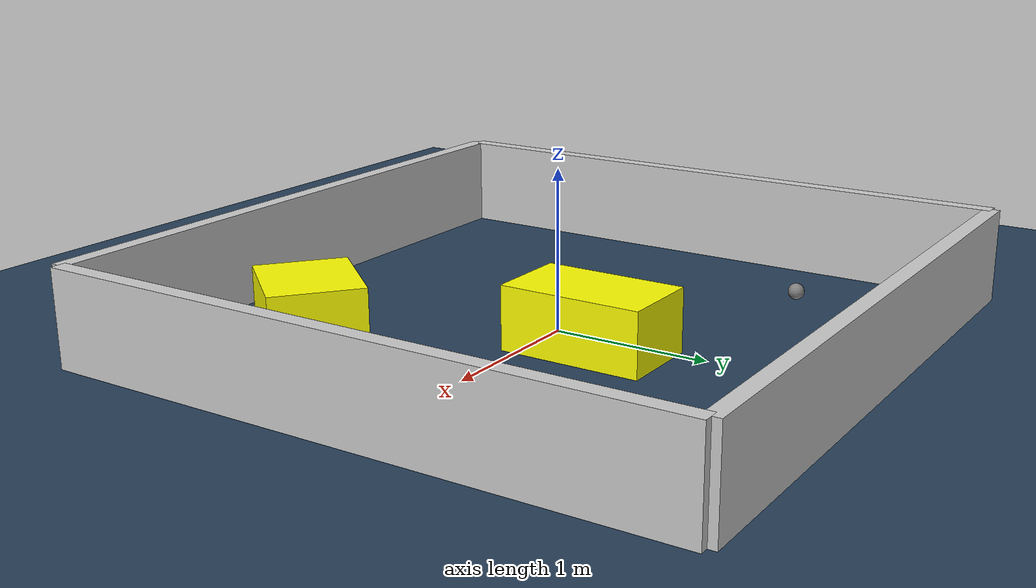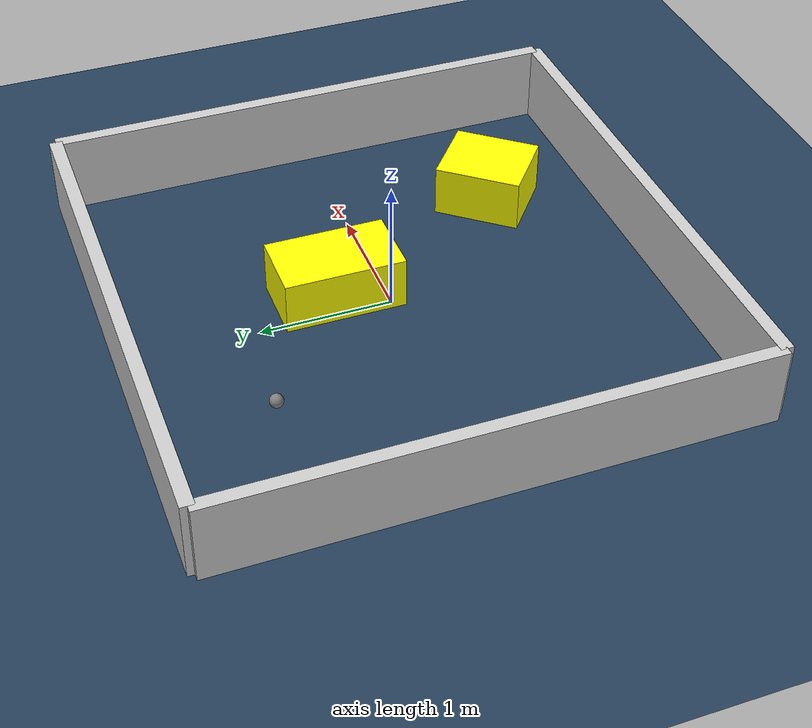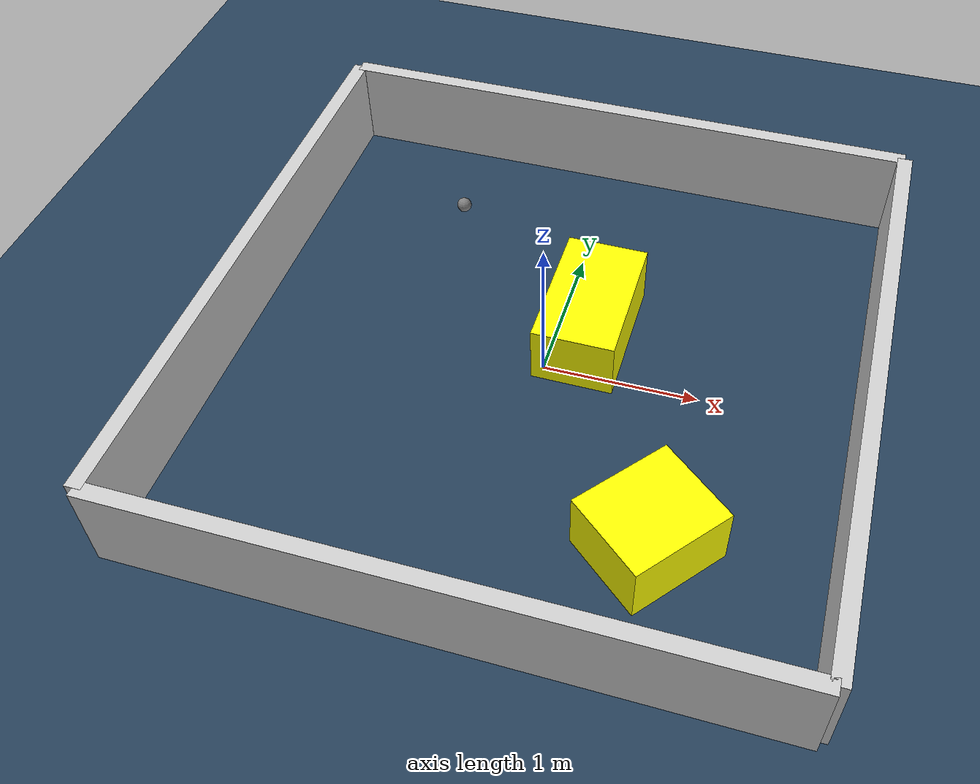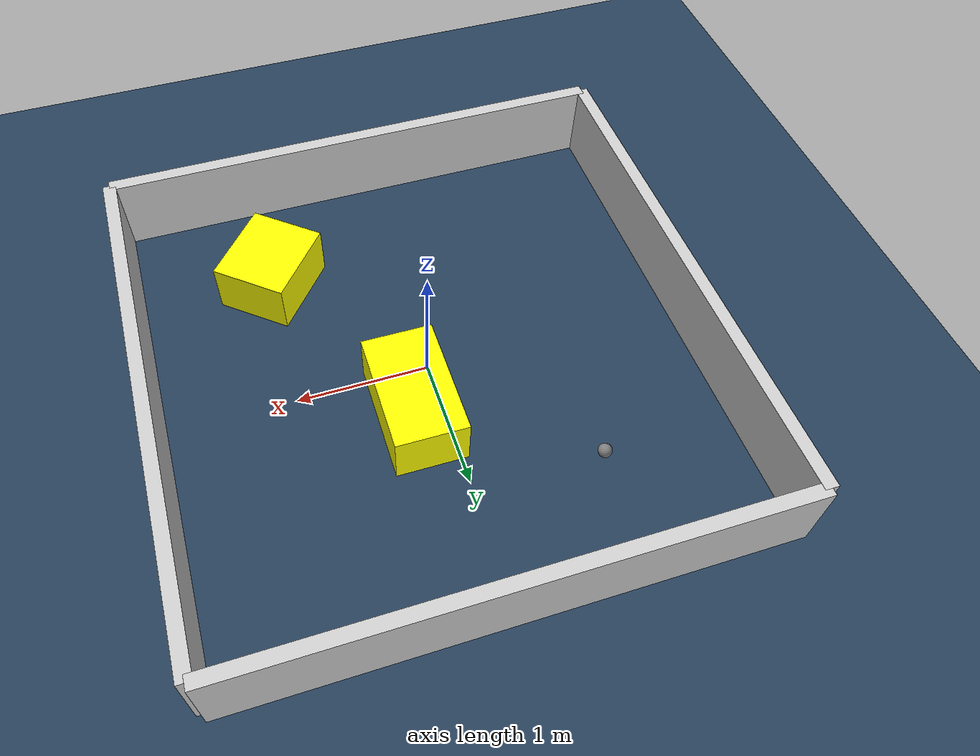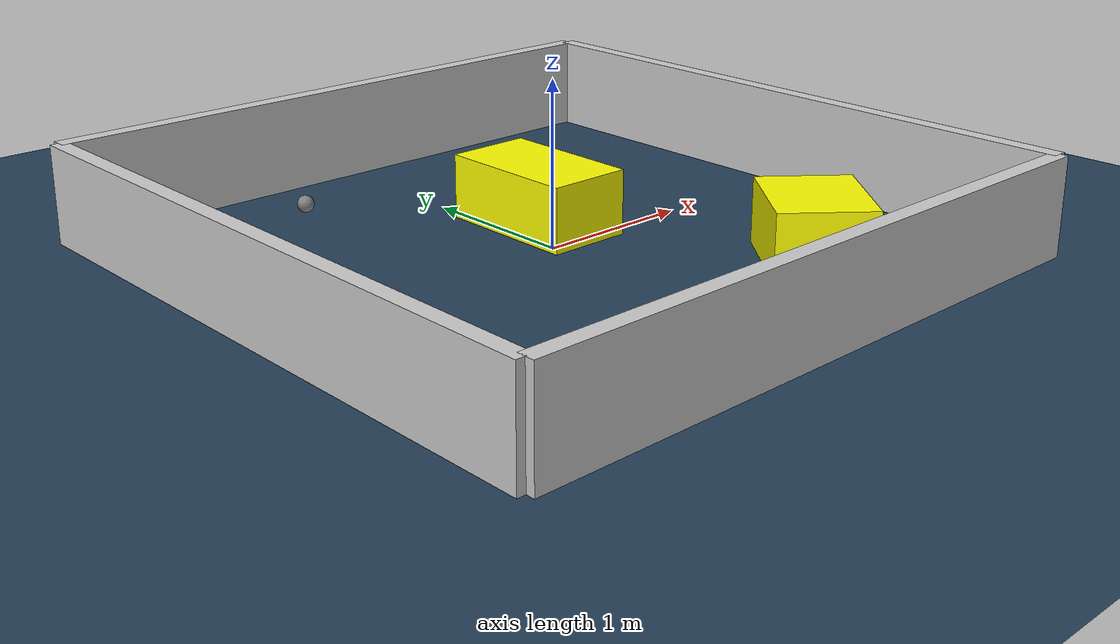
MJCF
<?xml version="1.0" ?>
<mujoco model="generated_environment">
  <option timestep="0.01" integrator="RK4" cone="elliptic"/>
  <default>
    <geom density="1"/>
  </default>
  <asset>
    <texture builtin="gradient" height="3072" rgb1="0.3 0.5 0.7" rgb2="0 0 0" type="skybox" width="512"/>
    <texture builtin="checker" height="300" mark="edge" markrgb="0.8 0.8 0.8" name="groundplane" rgb1="0.2 0.3 0.4" rgb2="0.1 0.2 0.3" type="2d" width="300"/>
    <material name="groundplane" reflectance="0.2" texrepeat="5 5" texture="groundplane" texuniform="true"/>
    <material name="robot" rgba="0.0 1.0 0.0 1"/>
  </asset>
  <worldbody>
    <light dir="0 0 -1" directional="true" pos="0 0 1.5"/>
    <geom condim="4" friction="1.0 0.005 0.001" material="groundplane" name="floor" size="0 0 0.05" type="plane"/>
    <body name="walls">
      <geom name="wall_1" condim="4" pos="-2.0 0.0 0.3" rgba="0.800000011920929 0.800000011920929 0.800000011920929 1.0" size="0.05 2.0 0.3" type="box"/>
      <geom name="wall_2" condim="4" pos="2.0 0.0 0.3" rgba="0.800000011920929 0.800000011920929 0.800000011920929 1.0" size="0.05 2.0 0.3" type="box"/>
      <geom name="wall_3" condim="4" pos="0.0 -2.0 0.3" rgba="0.800000011920929 0.800000011920929 0.800000011920929 1.0" size="2.0 0.05 0.3" type="box"/>
      <geom name="wall_4" condim="4" pos="0.0 2.0 0.3" rgba="0.800000011920929 0.800000011920929 0.800000011920929 1.0" size="2.0 0.05 0.3" type="box"/>
    </body>
    <body name="robot">
      <joint name="joint_x" type="slide" pos="0 0 0" axis="1 0 0"/>
      <joint name="joint_y" type="slide" pos="0 0 0" axis="0 1 0"/>
      <geom name="robot" type="sphere" pos="-0.9152452560241906 1.1454295963508825 0.2" size="0.05" mass="5." friction="1.0 0.005 0.0001" condim="4"/>
      <site name="sensor_ball"/>
    </body>
    <body name="obstacle_1_movable">
      <geom name="obstacle_1_movable" condim="4" pos="0.9364582089825744 -1.1393407814212195 0.2" euler="0 0 320.65472532906773" friction="1.0 0.005 0.001" rgba="1 1 0 1" size="0.2883238873735042 0.3309292873121281 0.2" type="box" mass="0.1"/>
      <joint type="free"/>
    </body>
    <body name="obstacle_2_movable">
      <geom name="obstacle_2_movable" condim="4" pos="0.20884262962411348 0.35874233765541463 0.2" euler="0 0 89.78216823360637" friction="1.0 0.005 0.001" rgba="1 1 0 1" size="0.45258632961974415 0.26547103795623167 0.2" type="box" mass="0.1"/>
      <joint type="free"/>
    </body>
  </worldbody>
  <actuator>
    <motor name="actuator_x" joint="joint_x" gear="1" ctrlrange="-1 1"/>
    <motor name="actuator_y" joint="joint_y" gear="1" ctrlrange="-1 1"/>
  </actuator>
</mujoco>
